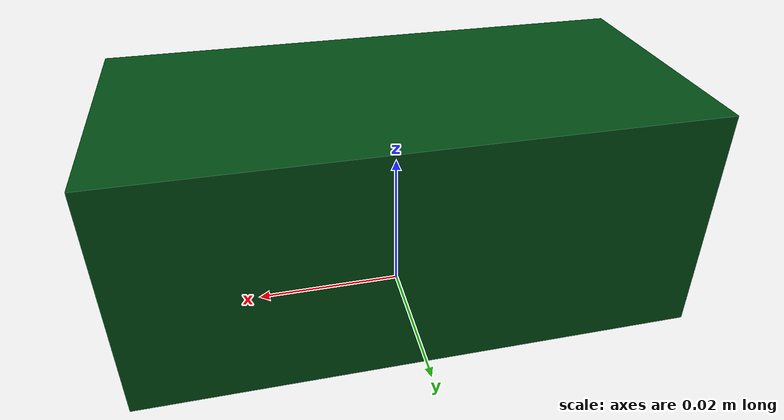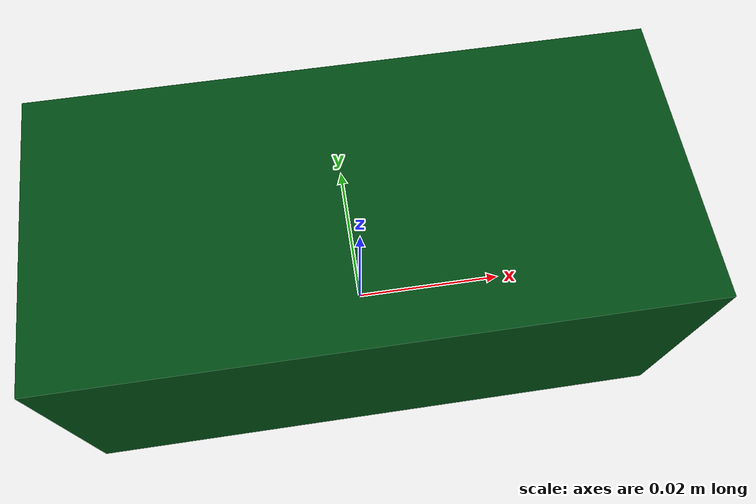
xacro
<?xml version="1.0"?>

<robot name="simulation_environment_brick" xmlns:xacro="http://www.ros.org/wiki/xacro">

  <link name="brick">
    <inertial>
      <mass value = "0.001" />
      <origin xyz="0 0 0.01556" rpy="0 0 0"/>
      <inertia
          ixx="0.00001" ixy="0" ixz="0"
          iyy="0.0001" iyz="0"
          izz="0.0001"/>
    </inertial>
    <visual>
      <origin rpy="0 0 0" xyz="0 0 0"/>
      <geometry>
        <mesh filename="package://cooperation_landing/urdf/mesh/brick_294g.dae" />
      </geometry>
    </visual>
    <collision>
      <origin xyz="0 0 0.10"/>
      <geometry>
        <box size="0.15 0.15 0.2"/>
      </geometry>
    </collision>
  </link>
</robot>
